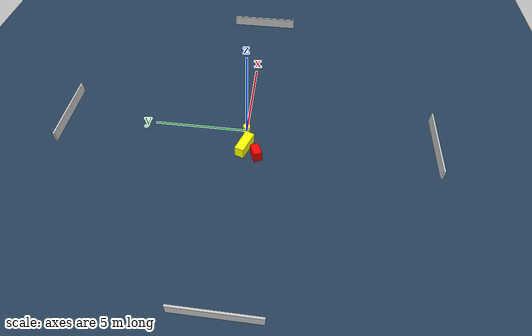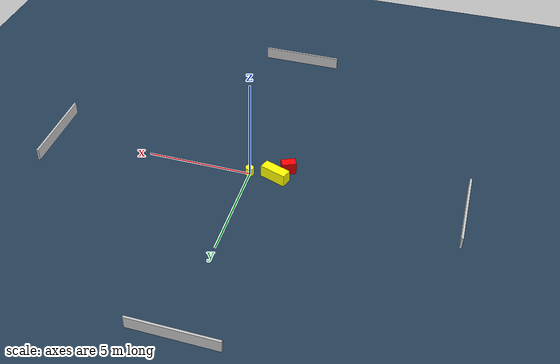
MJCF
<?xml version="1.0" ?>
<mujoco model="generated_environment">
  <option timestep="0.01" integrator="RK4" cone="elliptic"/>
  <default>
    <geom density="1"/>
  </default>
  <asset>
    <texture builtin="gradient" height="3072" name="skybox" rgb1="0.3 0.5 0.7" rgb2="0 0 0" type="skybox" width="512"/>
    <texture builtin="checker" height="300" name="groundplane" rgb1="0.2 0.3 0.4" rgb2="0.1 0.2 0.3" type="2d" width="300"/>
    <material name="groundplane" reflectance="0.2" texrepeat="5 5" texture="groundplane"/>
  </asset>
  <worldbody>
    <light dir="0 0 -1" directional="true" pos="0 0 1.5"/>
    <geom condim="3" friction="0.5 0.005 0.001" material="groundplane" name="floor" pos="0 0 0" size="0 0 0.05" type="plane"/>
    <body name="walls">
      <geom name="wall_1" condim="4" pos="-10.0 0.0 0.3" rgba="0.800000011920929 0.800000011920929 0.800000011920929 1.0" size="0.05 2.0 0.3" type="box"/>
      <geom name="wall_2" condim="4" pos="10.0 0.0 0.3" rgba="0.800000011920929 0.800000011920929 0.800000011920929 1.0" size="0.05 2.0 0.3" type="box"/>
      <geom name="wall_3" condim="4" pos="0.0 -10.0 0.3" rgba="0.800000011920929 0.800000011920929 0.800000011920929 1.0" size="2.0 0.05 0.3" type="box"/>
      <geom name="wall_4" condim="4" pos="0.0 10.0 0.3" rgba="0.800000011920929 0.800000011920929 0.800000011920929 1.0" size="2.0 0.05 0.3" type="box"/>
    </body>
    <body name="robot">
      <joint name="joint_x" type="slide" pos="0 0 0" axis="1 0 0"/>
      <joint name="joint_y" type="slide" pos="0 0 0" axis="0 1 0"/>
      <geom name="robot" type="cylinder" pos="0.0 0.0 0.2" size="0.2 0.2 0.0" mass="5.0" friction="1.0 0.005 0.0001" condim="4" rgba="1.0 1.0 0.0 1.0"/>
    </body>
    <body name="obstacle_1_movable">
      <geom name="obstacle_1_movable" condim="4" pos="-1.2288704989818777 -0.042997937271356666 0.3" euler="0 0 160.26866509600026" friction="0.0 0.005 0.001" rgba="1.0 1.0 0.0 1.0" size="0.6469791206044941 0.25004579650181386 0.3" type="box" mass="0.1"/>
      <joint type="free"/>
    </body>
    <body name="obstacle_2_static">
      <geom name="obstacle_2_static" condim="4" pos="-1.6997578943632177 -0.6946879087061912 0.3" euler="0 0 114.3132697905892" friction="0.0 0.005 0.001" rgba="1.0 0.0 0.0 1.0" size="0.21533717322443602 0.3428751635974058 0.3" type="box"/>
    </body>
  </worldbody>
  <actuator>
    <motor name="actuator_x" joint="joint_x" gear="1" ctrlrange="-1 1"/>
    <motor name="actuator_y" joint="joint_y" gear="1" ctrlrange="-1 1"/>
  </actuator>
</mujoco>
